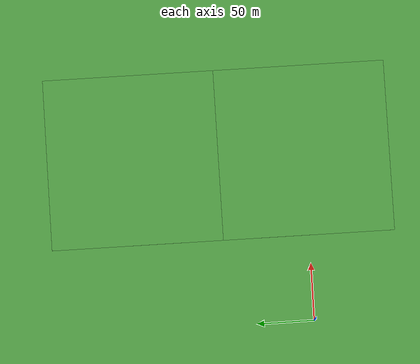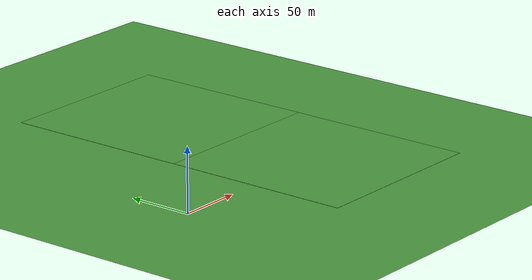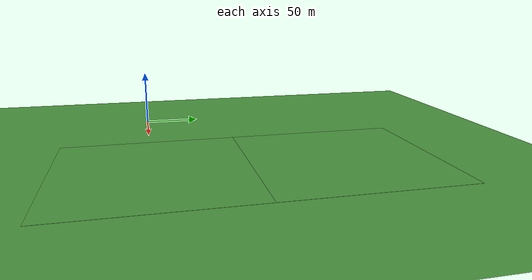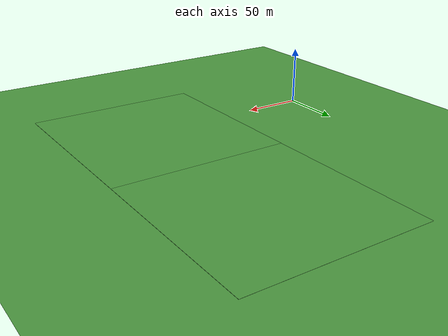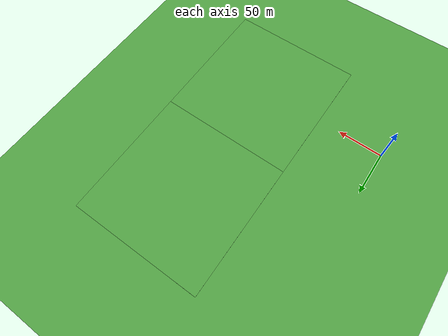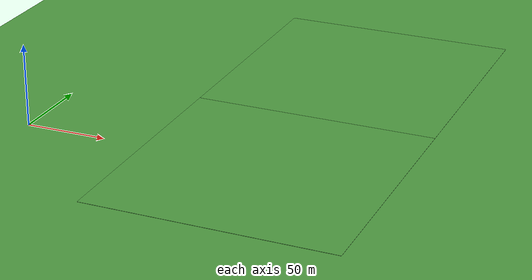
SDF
<?xml version='1.0'?>
<sdf version='1.4'>
  <model name='grass_plane'>
    <static>true</static>
    <link name='link'>
      <collision name='collision'>
        <geometry>
          <plane>
            <normal>0 0 1</normal>
            <size>500 500</size>
          </plane>
        </geometry>
        <surface>
          <friction>
            <ode>
              <mu>0.2</mu>
              <mu2>.2</mu2>
            </ode>
          </friction>
        </surface>
      </collision>

      <visual name='visual_0'>
        <pose>0 0 0 0 0 0</pose>

        <cast_shadows>false</cast_shadows>
        <geometry>
          <plane>
            <normal>0 0 1</normal>
            <size>150 150</size>
          </plane>
        </geometry>
        <material>
          <script>
            <uri>model://grass_plane/materials/scripts</uri>
            <uri>model://grass_plane/materials/textures</uri>
            <name>vrc/grass</name>
          </script>
        </material>
      </visual>

      <visual name='visual_1'>
        <pose>150 0 0 0 0 0</pose>

        <cast_shadows>false</cast_shadows>
        <geometry>
          <plane>
            <normal>0 0 1</normal>
            <size>150 150</size>
          </plane>
        </geometry>
        <material>
          <script>
            <uri>model://grass_plane/materials/scripts</uri>
            <uri>model://grass_plane/materials/textures</uri>
            <name>vrc/grass</name>
          </script>
        </material>
      </visual>

      <visual name='visual_2'>
        <pose>150 150 0 0 0 0</pose>

        <cast_shadows>false</cast_shadows>
        <geometry>
          <plane>
            <normal>0 0 1</normal>
            <size>150 150</size>
          </plane>
        </geometry>
        <material>
          <script>
            <uri>model://grass_plane/materials/scripts</uri>
            <uri>model://grass_plane/materials/textures</uri>
            <name>vrc/grass</name>
          </script>
        </material>
      </visual>

    </link>
  </model>
</sdf>
